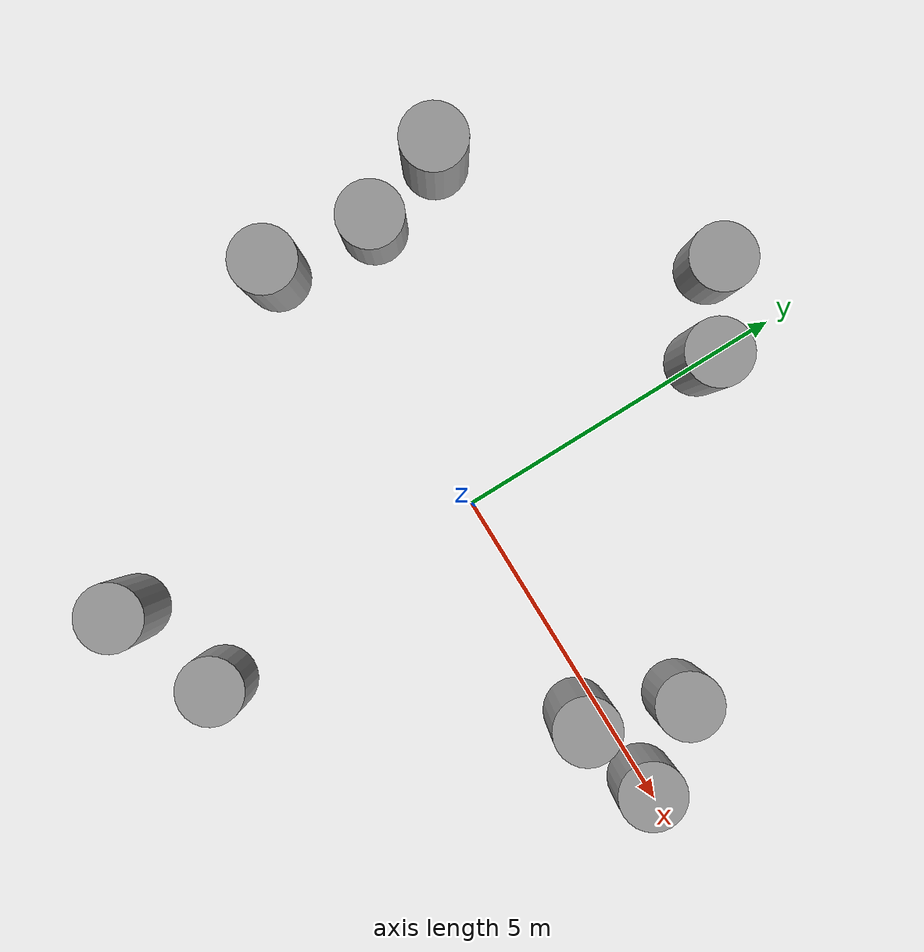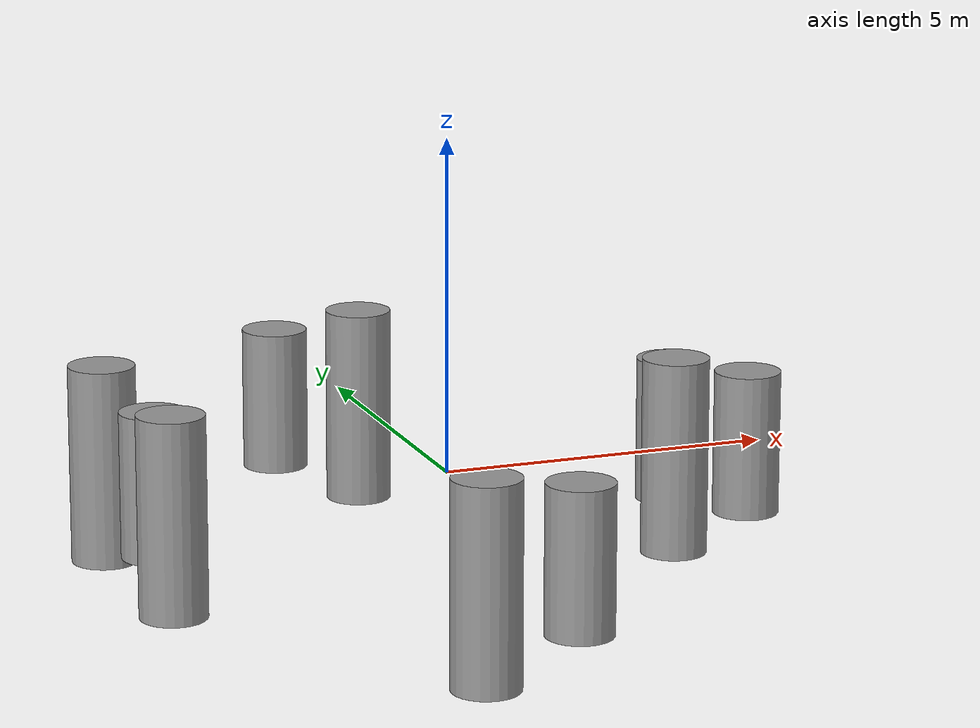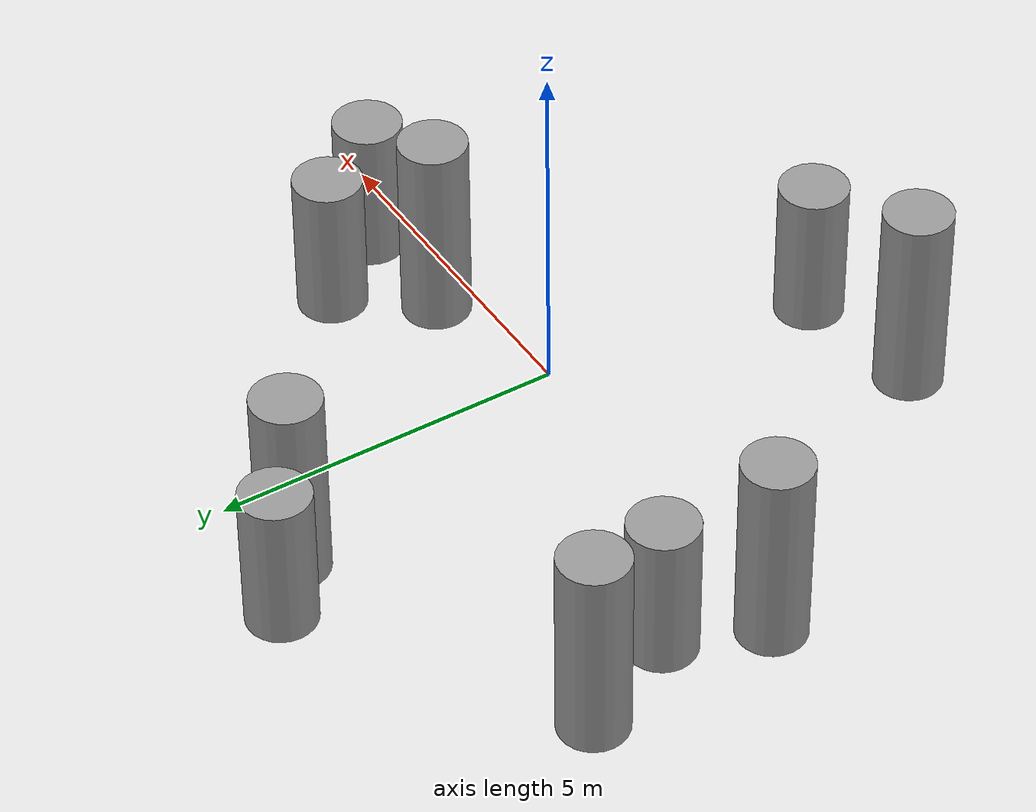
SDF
<?xml version='1.0'?>
<sdf version='1.7'>
    <model name="random_forest">
        <pose>0 0 0 0 0 0</pose>

        <include>
            <uri>model://tree_type_tall</uri>
            <name>upper_left_1</name>
            <pose frame="">-4.6 2.2 0 0 0 0</pose>
        </include>

        <include>
            <uri>model://tree_type_short</uri>
            <name>upper_left_2</name>
            <pose frame="">-4.2 0.9 0 0 0 0</pose>
        </include>

        <include>
            <uri>model://tree_type_tall</uri>
            <name>upper_left_3</name>
            <pose frame="">-4.4 -0.7 0 0 0 0</pose>
        </include>

        <include>
            <uri>model://tree_type_tall</uri>
            <name>lower_middle_1</name>
            <pose frame="">-1.3 -5.1 0 0 0 0</pose>
        </include>

        <include>
            <uri>model://tree_type_short</uri>
            <name>lower_middle_2</name>
            <pose frame="">0.3 -4.5 0 0 0 0</pose>
        </include>

        <include>
            <uri>model://tree_type_short</uri>
            <name>middle_right_1</name>
            <pose frame="">4.0 1.1 0 0 0 0</pose>
        </include>

        <include>
            <uri>model://tree_type_tall</uri>
            <name>middle_right_2</name>
            <pose frame="">3.5 -0.3 0 0 0 0</pose>
        </include>

        <include>
            <uri>model://tree_type_short</uri>
            <name>middle_right_3</name>
            <pose frame="">4.8 0 0 0 0 0</pose>
        </include>

        <include>
            <uri>model://tree_type_short</uri>
            <name>upper_middle_1</name>
            <pose frame="">-1.1 4.8 0 0 0 0</pose>
        </include>

        <include>
            <uri>model://tree_type_tall</uri>
            <name>upper_middle_2</name>
            <pose frame="">0 4.0 0 0 0 0</pose>
        </include>

    </model>
</sdf>

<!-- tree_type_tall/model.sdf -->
<sdf version='1.7'>
    <model name='tree_type_tall'>
        <pose>0 0 0.5 0 -0 0</pose>
        <link name='link'>
            <inertial>
                <mass>1</mass>
                <inertia>
                    <ixx>0.8125</ixx>
                    <ixy>0</ixy>
                    <ixz>0</ixz>
                    <iyy>0.8125</iyy>
                    <iyz>0</iyz>
                    <izz>0.125</izz>
                </inertia>
                <pose>0 0 0 0 -0 0</pose>
            </inertial>
            <collision name='collision'>
                <geometry>
                    <cylinder>
                        <radius>0.5</radius>
                        <length>3</length>
                    </cylinder>
                </geometry>
                <max_contacts>10</max_contacts>
            </collision>
            <visual name='visual'>
                <geometry>
                    <cylinder>
                        <radius>0.5</radius>
                        <length>3</length>
                    </cylinder>
                </geometry>
                <material>
                    <script>
                        <name>Gazebo/Grey</name>
                        <uri>file://media/materials/scripts/gazebo.material</uri>
                    </script>
                </material>
            </visual>
            <self_collide>0</self_collide>
            <enable_wind>0</enable_wind>
            <kinematic>0</kinematic>
        </link>
    </model>
</sdf>

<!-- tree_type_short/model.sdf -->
<sdf version='1.7'>
    <model name='tree_type_short'>
        <pose>0 0 0.5 0 -0 0</pose>
        <link name='link'>
            <inertial>
                <mass>1</mass>
                <inertia>
                    <ixx>0.465833</ixx>
                    <ixy>0</ixy>
                    <ixz>0</ixz>
                    <iyy>0.465833</iyy>
                    <iyz>0</iyz>
                    <izz>0.125</izz>
                </inertia>
                <pose>0 0 0 0 -0 0</pose>
            </inertial>
            <collision name='collision'>
                <geometry>
                    <cylinder>
                        <radius>0.5</radius>
                        <length>2.2</length>
                    </cylinder>
                </geometry>
                <max_contacts>10</max_contacts>
            </collision>
            <visual name='visual'>
                <geometry>
                    <cylinder>
                        <radius>0.5</radius>
                        <length>2.2</length>
                    </cylinder>
                </geometry>
                <material>
                    <script>
                        <name>Gazebo/Grey</name>
                        <uri>file://media/materials/scripts/gazebo.material</uri>
                    </script>
                </material>
            </visual>
            <self_collide>0</self_collide>
            <enable_wind>0</enable_wind>
            <kinematic>0</kinematic>
        </link>
    </model>
</sdf>
